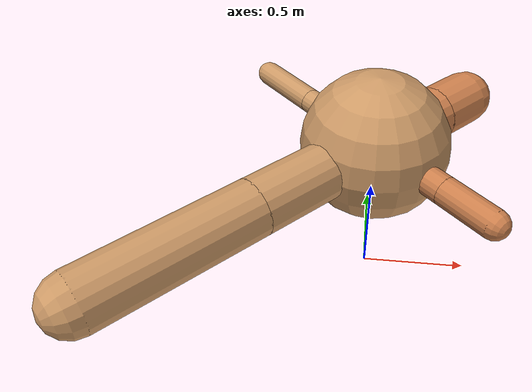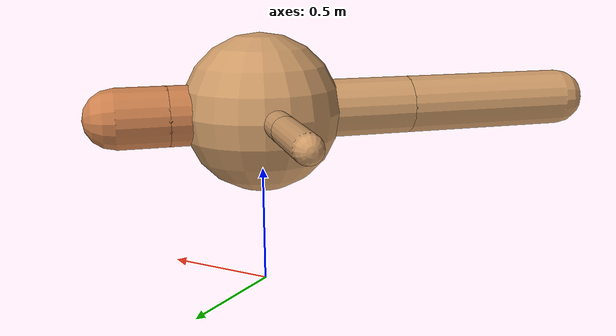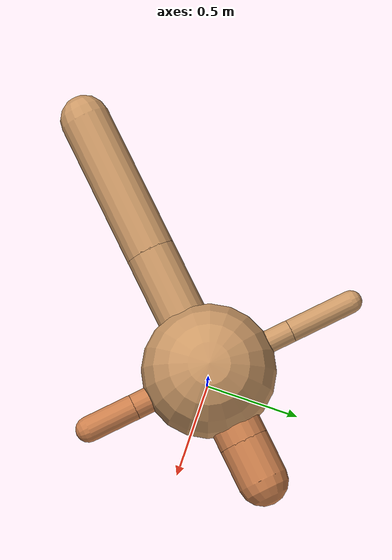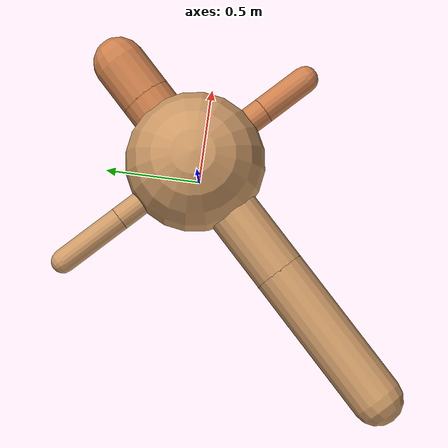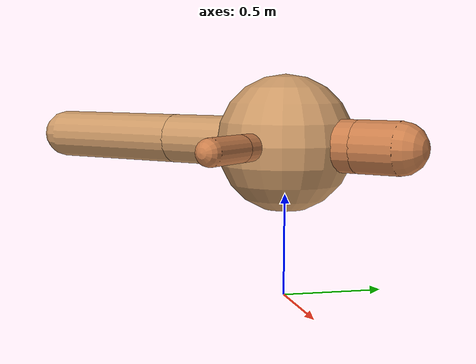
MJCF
<?xml version="1.0" ?>
<mujoco model="ant">

	<compiler angle="degree" coordinate="local" inertiafromgeom="true"/>

	<option integrator="RK4" timestep="0.01"/>

	<custom>

		<numeric data="0.0 0.0 0.55 1.0 0.0 0.0 0.0 0.0 1.0 0.0 -1.0 0.0 -1.0 0.0 1.0" name="init_qpos"/>

	</custom>

	<default>

		<joint armature="1" damping="1" limited="true"/>

		<geom conaffinity="0" condim="3" density="5.0" friction="1.5 0.1 0.1" margin="0.01" rgba="0.8 0.6 0.4 1"/>

	</default>

	<worldbody>

		<body name="torso" pos="0 0 0.75">

			<geom name="torso_geom" pos="0 0 0" size="0.33577585839795193" type="sphere"/>

			<!--joint armature="0" damping="0" limited="false" margin="0.01" name="root" pos="0 0 0" type="free"/-->

			<body name="front_left_leg" pos="0 0 0">

				<geom fromto="0 0 0 0.2 0.2 0" name="aux_1_geom" size="0.12628644032800815" type="capsule" rgba=".8 .5 .3 1"/>

				<body name="aux_1" pos="0.2 0.2 0">

					<joint axis="0 0 1" name="hip_1" pos="0.0 0.0 0.0" range="-40 40" type="hinge"/>

					<geom fromto="0 0 0 0.07547549567220105 0.07547549567220105 0" name="left_leg_geom" size="0.12628644032800815" type="capsule" rgba=".8 .5 .3 1"/>

					<body pos="0.07547549567220105 0.07547549567220105 0" name="front_left_foot">

						<joint axis="-1 1 0" name="ankle_1" pos="0.0 0.0 0.0" range="30 100" type="hinge"/>

						<geom fromto="0 0 0 0.1509509913444021 0.1509509913444021 0" name="left_ankle_geom" size="0.12628644032800815" type="capsule" rgba=".8 .5 .3 1"/>

					</body>

				</body>

			</body>

			<body name="front_right_leg" pos="0 0 0">

				<geom fromto="0 0 0 -0.2 0.2 0" name="aux_2_geom" size="0.057348271600994705" type="capsule"/>

				<body name="aux_2" pos="-0.2 0.2 0">

					<joint axis="0 0 1" name="hip_2" pos="0.0 0.0 0.0" range="-40 40" type="hinge"/>

					<geom fromto="0 0 0 -0.11812953673547011 0.11812953673547011 0" name="right_leg_geom" size="0.057348271600994705" type="capsule"/>

					<body pos="-0.11812953673547011 0.11812953673547011 0" name="front_right_foot">

						<joint axis="1 1 0" name="ankle_2" pos="0.0 0.0 0.0" range="-100 -30" type="hinge"/>

						<geom fromto="0 0 0 -0.23625907347094022 0.23625907347094022 0" name="right_ankle_geom" size="0.057348271600994705" type="capsule"/>

					</body>

				</body>

			</body>

			<body name="left_back_leg" pos="0 0 0">

				<geom fromto="0 0 0 -0.2 -0.2 0" name="aux_3_geom" size="0.12546755045201669" type="capsule"/>

				<body name="aux_3" pos="-0.2 -0.2 0">

					<joint axis="0 0 1" name="hip_3" pos="0.0 0.0 0.0" range="-40 40" type="hinge"/>

					<geom fromto="0 0 0 -0.266246131470768 -0.266246131470768 0" name="back_leg_geom" size="0.12546755045201669" type="capsule"/>

					<body pos="-0.266246131470768 -0.266246131470768 0" name="left_back_foot">

						<joint axis="-1 1 0" name="ankle_3" pos="0.0 0.0 0.0" range="-100 -30" type="hinge"/>

						<geom fromto="0 0 0 -0.532492262941536 -0.532492262941536 0" name="third_ankle_geom" size="0.12546755045201669" type="capsule"/>

					</body>

				</body>

			</body>

			<body name="right_back_leg" pos="0 0 0">

				<geom fromto="0 0 0 0.2 -0.2 0" name="aux_4_geom" size="0.06457674903486614" type="capsule" rgba=".8 .5 .3 1"/>

				<body name="aux_4" pos="0.2 -0.2 0">

					<joint axis="0 0 1" name="hip_4" pos="0.0 0.0 0.0" range="-40 40" type="hinge"/>

					<geom fromto="0 0 0 0.08871515558889519 -0.08871515558889519 0" name="rightback_leg_geom" size="0.06457674903486614" type="capsule" rgba=".8 .5 .3 1"/>

					<body pos="0.08871515558889519 -0.08871515558889519 0" name="right_back_foot">

						<joint axis="1 1 0" name="ankle_4" pos="0.0 0.0 0.0" range="30 100" type="hinge"/>

						<geom fromto="0 0 0 0.17743031117779037 -0.17743031117779037 0" name="fourth_ankle_geom" size="0.06457674903486614" type="capsule" rgba=".8 .5 .3 1"/>

					</body>

				</body>

			</body>

		</body>

	</worldbody>

	<actuator>

		<motor ctrllimited="true" ctrlrange="-1.0 1.0" joint="hip_4" gear="150"/>

		<motor ctrllimited="true" ctrlrange="-1.0 1.0" joint="ankle_4" gear="150"/>

		<motor ctrllimited="true" ctrlrange="-1.0 1.0" joint="hip_1" gear="150"/>

		<motor ctrllimited="true" ctrlrange="-1.0 1.0" joint="ankle_1" gear="150"/>

		<motor ctrllimited="true" ctrlrange="-1.0 1.0" joint="hip_2" gear="150"/>

		<motor ctrllimited="true" ctrlrange="-1.0 1.0" joint="ankle_2" gear="150"/>

		<motor ctrllimited="true" ctrlrange="-1.0 1.0" joint="hip_3" gear="150"/>

		<motor ctrllimited="true" ctrlrange="-1.0 1.0" joint="ankle_3" gear="150"/>

	</actuator>

</mujoco>
